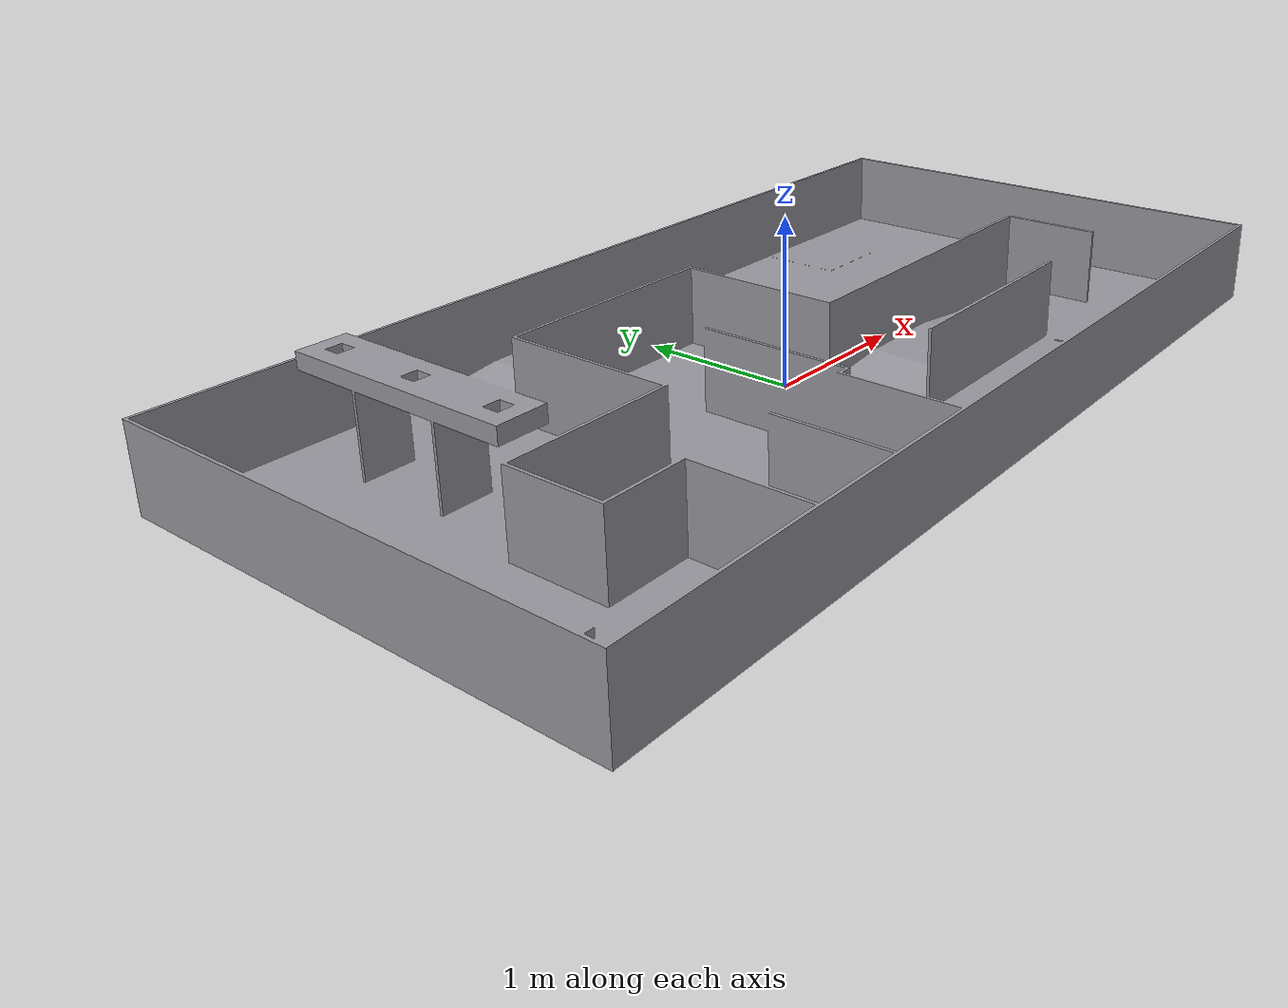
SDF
<?xml version="1.0" ?>
<sdf version="1.9">
  <model name="gamefield">
    <static>true</static>
    <link name="field_link">
      <pose>0 0 0 0 0 0</pose>

      <!-- VISUAL: full-detail original mesh, exactly as exported from CAD.
           Only used for rendering — never touched by the physics engine. -->
      <visual name="visual">
        <geometry>
          <mesh>
            <uri>model://gamefield/meshes/gamefield_visual.stl</uri>
            <scale>0.001 0.001 0.001</scale>
          </mesh>
        </geometry>
        <material>
          <ambient>0.55 0.55 0.58 1</ambient>
          <diffuse>0.6 0.6 0.63 1</diffuse>
          <specular>0.2 0.2 0.2 1</specular>
        </material>
      </visual>

      <collision name="collision_00">
        <geometry>
          <mesh>
            <uri>model://gamefield/meshes/collision/hull_00.obj</uri>
            <scale>0.001 0.001 0.001</scale>
          </mesh>
        </geometry>
        <surface>
          <friction>
            <ode>
              <mu>0.8</mu>
              <mu2>0.8</mu2>
            </ode>
          </friction>
          <contact>
            <ode>
              <kp>1e8</kp>
              <kd>1.0</kd>
            </ode>
          </contact>
        </surface>
      </collision>
      <collision name="collision_01">
        <geometry>
          <mesh>
            <uri>model://gamefield/meshes/collision/hull_01.obj</uri>
            <scale>0.001 0.001 0.001</scale>
          </mesh>
        </geometry>
        <surface>
          <friction>
            <ode>
              <mu>0.8</mu>
              <mu2>0.8</mu2>
            </ode>
          </friction>
          <contact>
            <ode>
              <kp>1e8</kp>
              <kd>1.0</kd>
            </ode>
          </contact>
        </surface>
      </collision>
      <collision name="collision_02">
        <geometry>
          <mesh>
            <uri>model://gamefield/meshes/collision/hull_02.obj</uri>
            <scale>0.001 0.001 0.001</scale>
          </mesh>
        </geometry>
        <surface>
          <friction>
            <ode>
              <mu>0.8</mu>
              <mu2>0.8</mu2>
            </ode>
          </friction>
          <contact>
            <ode>
              <kp>1e8</kp>
              <kd>1.0</kd>
            </ode>
          </contact>
        </surface>
      </collision>
      <collision name="collision_03">
        <geometry>
          <mesh>
            <uri>model://gamefield/meshes/collision/hull_03.obj</uri>
            <scale>0.001 0.001 0.001</scale>
          </mesh>
        </geometry>
        <surface>
          <friction>
            <ode>
              <mu>0.8</mu>
              <mu2>0.8</mu2>
            </ode>
          </friction>
          <contact>
            <ode>
              <kp>1e8</kp>
              <kd>1.0</kd>
            </ode>
          </contact>
        </surface>
      </collision>
      <collision name="collision_04">
        <geometry>
          <mesh>
            <uri>model://gamefield/meshes/collision/hull_04.obj</uri>
            <scale>0.001 0.001 0.001</scale>
          </mesh>
        </geometry>
        <surface>
          <friction>
            <ode>
              <mu>0.8</mu>
              <mu2>0.8</mu2>
            </ode>
          </friction>
          <contact>
            <ode>
              <kp>1e8</kp>
              <kd>1.0</kd>
            </ode>
          </contact>
        </surface>
      </collision>
      <collision name="collision_05">
        <geometry>
          <mesh>
            <uri>model://gamefield/meshes/collision/hull_05.obj</uri>
            <scale>0.001 0.001 0.001</scale>
          </mesh>
        </geometry>
        <surface>
          <friction>
            <ode>
              <mu>0.8</mu>
              <mu2>0.8</mu2>
            </ode>
          </friction>
          <contact>
            <ode>
              <kp>1e8</kp>
              <kd>1.0</kd>
            </ode>
          </contact>
        </surface>
      </collision>
      <collision name="collision_06">
        <geometry>
          <mesh>
            <uri>model://gamefield/meshes/collision/hull_06.obj</uri>
            <scale>0.001 0.001 0.001</scale>
          </mesh>
        </geometry>
        <surface>
          <friction>
            <ode>
              <mu>0.8</mu>
              <mu2>0.8</mu2>
            </ode>
          </friction>
          <contact>
            <ode>
              <kp>1e8</kp>
              <kd>1.0</kd>
            </ode>
          </contact>
        </surface>
      </collision>
      <collision name="collision_07">
        <geometry>
          <mesh>
            <uri>model://gamefield/meshes/collision/hull_07.obj</uri>
            <scale>0.001 0.001 0.001</scale>
          </mesh>
        </geometry>
        <surface>
          <friction>
            <ode>
              <mu>0.8</mu>
              <mu2>0.8</mu2>
            </ode>
          </friction>
          <contact>
            <ode>
              <kp>1e8</kp>
              <kd>1.0</kd>
            </ode>
          </contact>
        </surface>
      </collision>
      <collision name="collision_08">
        <geometry>
          <mesh>
            <uri>model://gamefield/meshes/collision/hull_08.obj</uri>
            <scale>0.001 0.001 0.001</scale>
          </mesh>
        </geometry>
        <surface>
          <friction>
            <ode>
              <mu>0.8</mu>
              <mu2>0.8</mu2>
            </ode>
          </friction>
          <contact>
            <ode>
              <kp>1e8</kp>
              <kd>1.0</kd>
            </ode>
          </contact>
        </surface>
      </collision>
      <collision name="collision_09">
        <geometry>
          <mesh>
            <uri>model://gamefield/meshes/collision/hull_09.obj</uri>
            <scale>0.001 0.001 0.001</scale>
          </mesh>
        </geometry>
        <surface>
          <friction>
            <ode>
              <mu>0.8</mu>
              <mu2>0.8</mu2>
            </ode>
          </friction>
          <contact>
            <ode>
              <kp>1e8</kp>
              <kd>1.0</kd>
            </ode>
          </contact>
        </surface>
      </collision>
      <collision name="collision_10">
        <geometry>
          <mesh>
            <uri>model://gamefield/meshes/collision/hull_10.obj</uri>
            <scale>0.001 0.001 0.001</scale>
          </mesh>
        </geometry>
        <surface>
          <friction>
            <ode>
              <mu>0.8</mu>
              <mu2>0.8</mu2>
            </ode>
          </friction>
          <contact>
            <ode>
              <kp>1e8</kp>
              <kd>1.0</kd>
            </ode>
          </contact>
        </surface>
      </collision>
      <collision name="collision_11">
        <geometry>
          <mesh>
            <uri>model://gamefield/meshes/collision/hull_11.obj</uri>
            <scale>0.001 0.001 0.001</scale>
          </mesh>
        </geometry>
        <surface>
          <friction>
            <ode>
              <mu>0.8</mu>
              <mu2>0.8</mu2>
            </ode>
          </friction>
          <contact>
            <ode>
              <kp>1e8</kp>
              <kd>1.0</kd>
            </ode>
          </contact>
        </surface>
      </collision>
      <collision name="collision_12">
        <geometry>
          <mesh>
            <uri>model://gamefield/meshes/collision/hull_12.obj</uri>
            <scale>0.001 0.001 0.001</scale>
          </mesh>
        </geometry>
        <surface>
          <friction>
            <ode>
              <mu>0.8</mu>
              <mu2>0.8</mu2>
            </ode>
          </friction>
          <contact>
            <ode>
              <kp>1e8</kp>
              <kd>1.0</kd>
            </ode>
          </contact>
        </surface>
      </collision>
      <collision name="collision_13">
        <geometry>
          <mesh>
            <uri>model://gamefield/meshes/collision/hull_13.obj</uri>
            <scale>0.001 0.001 0.001</scale>
          </mesh>
        </geometry>
        <surface>
          <friction>
            <ode>
              <mu>0.8</mu>
              <mu2>0.8</mu2>
            </ode>
          </friction>
          <contact>
            <ode>
              <kp>1e8</kp>
              <kd>1.0</kd>
            </ode>
          </contact>
        </surface>
      </collision>
      <collision name="collision_14">
        <geometry>
          <mesh>
            <uri>model://gamefield/meshes/collision/hull_14.obj</uri>
            <scale>0.001 0.001 0.001</scale>
          </mesh>
        </geometry>
        <surface>
          <friction>
            <ode>
              <mu>0.8</mu>
              <mu2>0.8</mu2>
            </ode>
          </friction>
          <contact>
            <ode>
              <kp>1e8</kp>
              <kd>1.0</kd>
            </ode>
          </contact>
        </surface>
      </collision>
      <collision name="collision_15">
        <geometry>
          <mesh>
            <uri>model://gamefield/meshes/collision/hull_15.obj</uri>
            <scale>0.001 0.001 0.001</scale>
          </mesh>
        </geometry>
        <surface>
          <friction>
            <ode>
              <mu>0.8</mu>
              <mu2>0.8</mu2>
            </ode>
          </friction>
          <contact>
            <ode>
              <kp>1e8</kp>
              <kd>1.0</kd>
            </ode>
          </contact>
        </surface>
      </collision>
      <collision name="collision_16">
        <geometry>
          <mesh>
            <uri>model://gamefield/meshes/collision/hull_16.obj</uri>
            <scale>0.001 0.001 0.001</scale>
          </mesh>
        </geometry>
        <surface>
          <friction>
            <ode>
              <mu>0.8</mu>
              <mu2>0.8</mu2>
            </ode>
          </friction>
          <contact>
            <ode>
              <kp>1e8</kp>
              <kd>1.0</kd>
            </ode>
          </contact>
        </surface>
      </collision>
      <collision name="collision_17">
        <geometry>
          <mesh>
            <uri>model://gamefield/meshes/collision/hull_17.obj</uri>
            <scale>0.001 0.001 0.001</scale>
          </mesh>
        </geometry>
        <surface>
          <friction>
            <ode>
              <mu>0.8</mu>
              <mu2>0.8</mu2>
            </ode>
          </friction>
          <contact>
            <ode>
              <kp>1e8</kp>
              <kd>1.0</kd>
            </ode>
          </contact>
        </surface>
      </collision>
      <collision name="collision_18">
        <geometry>
          <mesh>
            <uri>model://gamefield/meshes/collision/hull_18.obj</uri>
            <scale>0.001 0.001 0.001</scale>
          </mesh>
        </geometry>
        <surface>
          <friction>
            <ode>
              <mu>0.8</mu>
              <mu2>0.8</mu2>
            </ode>
          </friction>
          <contact>
            <ode>
              <kp>1e8</kp>
              <kd>1.0</kd>
            </ode>
          </contact>
        </surface>
      </collision>
      <collision name="collision_19">
        <geometry>
          <mesh>
            <uri>model://gamefield/meshes/collision/hull_19.obj</uri>
            <scale>0.001 0.001 0.001</scale>
          </mesh>
        </geometry>
        <surface>
          <friction>
            <ode>
              <mu>0.8</mu>
              <mu2>0.8</mu2>
            </ode>
          </friction>
          <contact>
            <ode>
              <kp>1e8</kp>
              <kd>1.0</kd>
            </ode>
          </contact>
        </surface>
      </collision>
      <collision name="collision_20">
        <geometry>
          <mesh>
            <uri>model://gamefield/meshes/collision/hull_20.obj</uri>
            <scale>0.001 0.001 0.001</scale>
          </mesh>
        </geometry>
        <surface>
          <friction>
            <ode>
              <mu>0.8</mu>
              <mu2>0.8</mu2>
            </ode>
          </friction>
          <contact>
            <ode>
              <kp>1e8</kp>
              <kd>1.0</kd>
            </ode>
          </contact>
        </surface>
      </collision>
      <collision name="collision_21">
        <geometry>
          <mesh>
            <uri>model://gamefield/meshes/collision/hull_21.obj</uri>
            <scale>0.001 0.001 0.001</scale>
          </mesh>
        </geometry>
        <surface>
          <friction>
            <ode>
              <mu>0.8</mu>
              <mu2>0.8</mu2>
            </ode>
          </friction>
          <contact>
            <ode>
              <kp>1e8</kp>
              <kd>1.0</kd>
            </ode>
          </contact>
        </surface>
      </collision>
      <collision name="collision_22">
        <geometry>
          <mesh>
            <uri>model://gamefield/meshes/collision/hull_22.obj</uri>
            <scale>0.001 0.001 0.001</scale>
          </mesh>
        </geometry>
        <surface>
          <friction>
            <ode>
              <mu>0.8</mu>
              <mu2>0.8</mu2>
            </ode>
          </friction>
          <contact>
            <ode>
              <kp>1e8</kp>
              <kd>1.0</kd>
            </ode>
          </contact>
        </surface>
      </collision>
      <collision name="collision_23">
        <geometry>
          <mesh>
            <uri>model://gamefield/meshes/collision/hull_23.obj</uri>
            <scale>0.001 0.001 0.001</scale>
          </mesh>
        </geometry>
        <surface>
          <friction>
            <ode>
              <mu>0.8</mu>
              <mu2>0.8</mu2>
            </ode>
          </friction>
          <contact>
            <ode>
              <kp>1e8</kp>
              <kd>1.0</kd>
            </ode>
          </contact>
        </surface>
      </collision>
      <collision name="collision_24">
        <geometry>
          <mesh>
            <uri>model://gamefield/meshes/collision/hull_24.obj</uri>
            <scale>0.001 0.001 0.001</scale>
          </mesh>
        </geometry>
        <surface>
          <friction>
            <ode>
              <mu>0.8</mu>
              <mu2>0.8</mu2>
            </ode>
          </friction>
          <contact>
            <ode>
              <kp>1e8</kp>
              <kd>1.0</kd>
            </ode>
          </contact>
        </surface>
      </collision>
      <collision name="collision_25">
        <geometry>
          <mesh>
            <uri>model://gamefield/meshes/collision/hull_25.obj</uri>
            <scale>0.001 0.001 0.001</scale>
          </mesh>
        </geometry>
        <surface>
          <friction>
            <ode>
              <mu>0.8</mu>
              <mu2>0.8</mu2>
            </ode>
          </friction>
          <contact>
            <ode>
              <kp>1e8</kp>
              <kd>1.0</kd>
            </ode>
          </contact>
        </surface>
      </collision>
    </link>
  </model>
</sdf>
